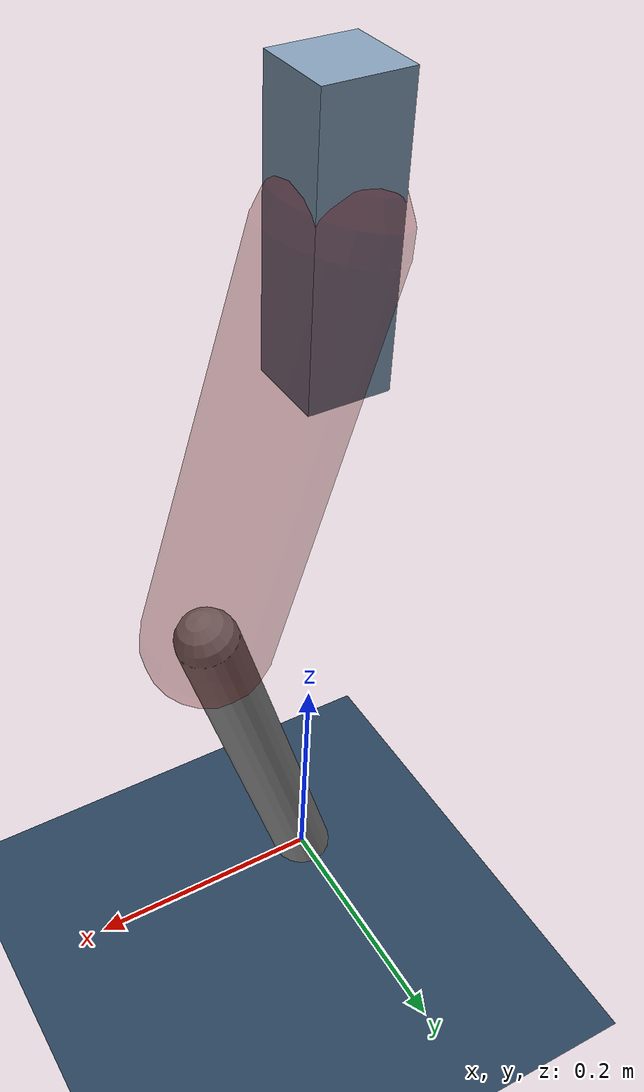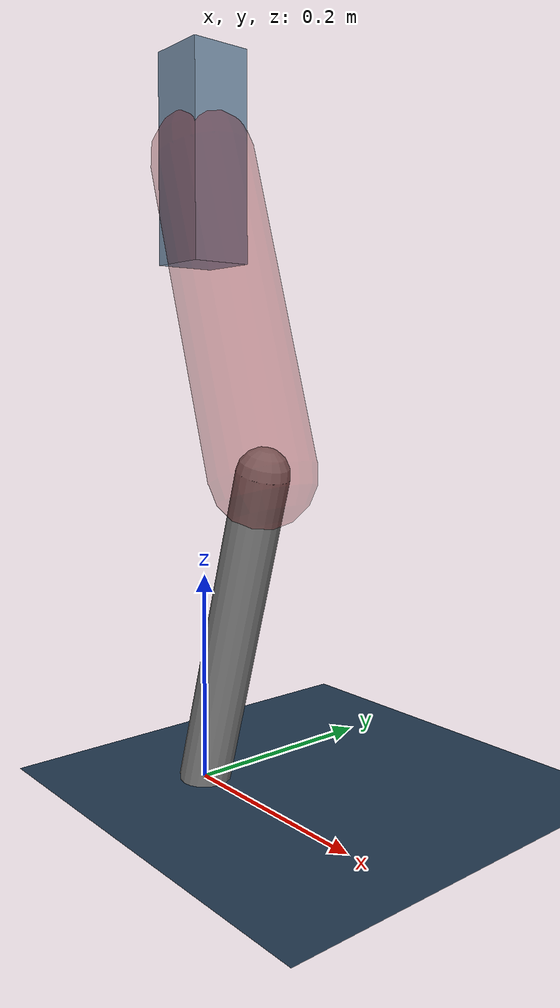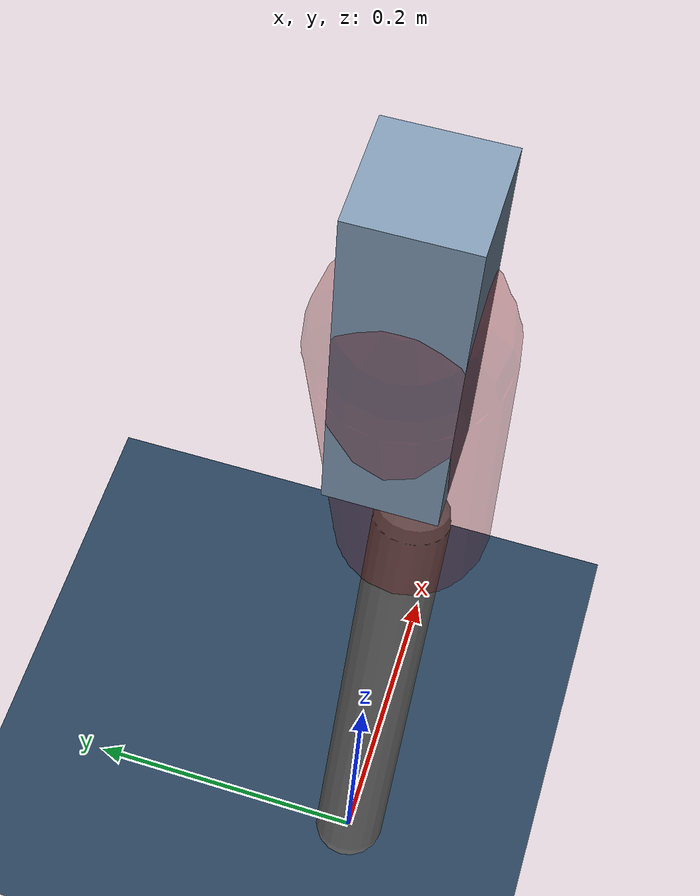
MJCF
<mujoco model="Hopper2D">
	<compiler inertiafromgeom="true" angle="radian" />
	<option timestep="0.001" integrator="implicit" cone="elliptic" solver="Newton" tolerance="1e-10" />

	<default>
		<geom contype="1" conaffinity="1" condim="3" friction="2 0.005 0.0001" solref="0.005 1" />
		<joint limited="true" damping="0.1" />
	</default>

	<asset>
		<texture name="skybox" type="skybox" builtin="gradient" rgb1=".4 .6 .8" rgb2="0 0 0" width="800" height="800" />
		<texture name="grid" type="2d" builtin="checker" rgb1=".1 .2 .3" rgb2=".2 .3 .4" width="300" height="300" mark="edge" markrgb=".2 .3 .4" />
		<material name="ground" texture="grid" texrepeat="1 1" texuniform="true" reflectance="0.1" />
		<material name="leg" rgba="0.5 0.6 0.7 1" />
	</asset>

	<worldbody>

		<geom name="floor" type="plane" size="5 5 0.25" material="ground" />

		<light directional="false" diffuse="0.8 0.8 0.8" specular="0.3 0.3 0.3" pos="0 0 2" dir="0 0 -1" />
		<light mode="targetbodycom" target="base" directional="false" diffuse="0.8 0.8 0.8" specular="0.3 0.3 0.3" pos="0 0 2" dir="0 0 -1" />

		<camera name="fixed" pos="0 -2 1" xyaxes="1 0 0 0 0 1" />
		<camera name="tracking" mode="trackcom" pos="0 -3 1" />

		<body name="root" pos="0 0 0.5992086179658145">
			<joint name="slide_x" type="slide" axis="1 0 0" range="-100 100" />
			<joint name="slide_z" type="slide" axis="0 0 1" range="0 10" />

			<body name="base" pos="0 0 0">
				<geom name="torso" type="box" size="0.03 0.03 0.1" mass="2.145" material="leg" />

				<body name="link1" pos="0 0 0" euler="0 1.2723369535392501 0">
					<joint type="hinge" axis="0 -1 0" pos="0 0 0" name="hinge1" limited="true" range="-3.14 3.14" stiffness="0" damping="0.1" />
					<geom name="thigh" type="capsule" fromto="0 0 0 0.3072788876737722 0 0" size="0.05" rgba="0.5 0 0 0.3" mass="1.008452996719185" />

					<body name="link2" pos="0.3072788876737722 0 0" euler="0 0.586009199624236 0">
						<joint type="hinge" axis="0 -1 0" pos="0 0 0" name="hinge2" limited="true" range="-3.14 3.14" stiffness="0" damping="0.1" />
						<geom name="shank" type="capsule" fromto="0 0 0 0.31859533770304965 0 0" size="0.025" mass="0.4985358039327447" />

					</body>
				</body>
			</body>
		</body>
	</worldbody>

	<actuator>
		<motor name="torque1" joint="hinge1" ctrlrange="-38.77806394777628 38.77806394777628" ctrllimited="true" gear="1" />
		<motor name="torque2" joint="hinge2" ctrlrange="-62.160586496381256 62.160586496381256" ctrllimited="true" gear="1" />
	</actuator>
</mujoco>
